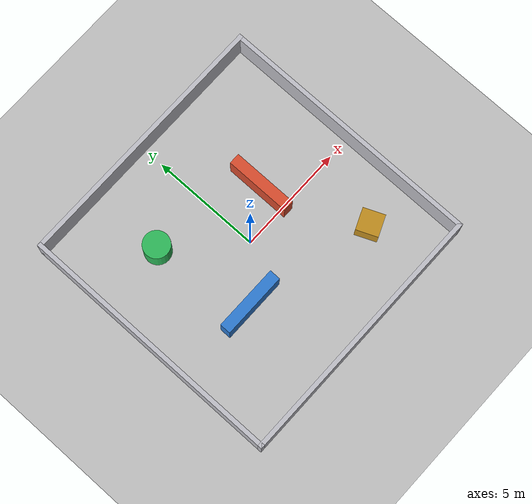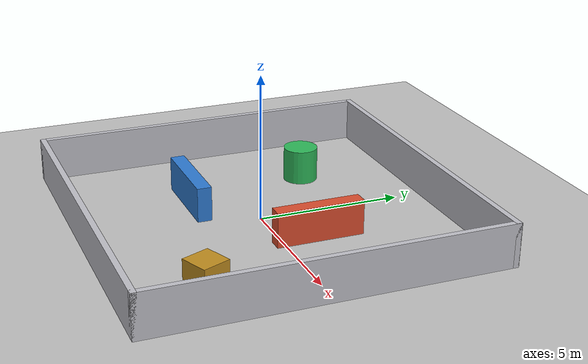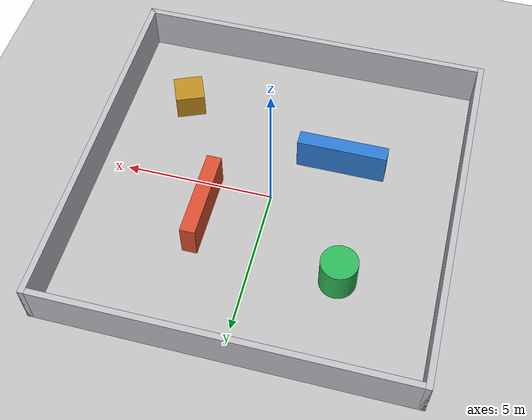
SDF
<?xml version="1.0"?>
<sdf version="1.9">
  <world name="robotbase_arena">
    <physics name="1ms" type="ignored">
      <max_step_size>0.001</max_step_size>
      <real_time_factor>1.0</real_time_factor>
    </physics>
    <plugin filename="gz-sim-physics-system" name="gz::sim::systems::Physics"/>
    <plugin filename="gz-sim-scene-broadcaster-system" name="gz::sim::systems::SceneBroadcaster"/>
    <plugin filename="gz-sim-user-commands-system" name="gz::sim::systems::UserCommands"/>
    <plugin filename="gz-sim-sensors-system" name="gz::sim::systems::Sensors">
      <render_engine>ogre2</render_engine>
    </plugin>

    <light type="directional" name="sun">
      <pose>0 0 10 0 0 0</pose>
      <cast_shadows>true</cast_shadows>
      <diffuse>0.9 0.9 0.9 1</diffuse>
      <specular>0.2 0.2 0.2 1</specular>
      <direction>-0.5 0.2 -0.9</direction>
    </light>

    <model name="ground">
      <static>true</static>
      <link name="link">
        <collision name="collision"><geometry><plane><normal>0 0 1</normal><size>30 30</size></plane></geometry></collision>
        <visual name="visual">
          <geometry><plane><normal>0 0 1</normal><size>30 30</size></plane></geometry>
          <material><ambient>0.75 0.75 0.75 1</ambient><diffuse>0.75 0.75 0.75 1</diffuse></material>
        </visual>
      </link>
    </model>

    <model name="north_wall">
      <static>true</static><pose>0 6 0.75 0 0 0</pose>
      <link name="link">
        <collision name="collision"><geometry><box><size>12.2 0.20 1.5</size></box></geometry></collision>
        <visual name="visual"><geometry><box><size>12.2 0.20 1.5</size></box></geometry><material><ambient>0.65 0.65 0.68 1</ambient><diffuse>0.75 0.75 0.78 1</diffuse></material></visual>
      </link>
    </model>
    <model name="south_wall">
      <static>true</static><pose>0 -6 0.75 0 0 0</pose>
      <link name="link">
        <collision name="collision"><geometry><box><size>12.2 0.20 1.5</size></box></geometry></collision>
        <visual name="visual"><geometry><box><size>12.2 0.20 1.5</size></box></geometry><material><ambient>0.65 0.65 0.68 1</ambient><diffuse>0.75 0.75 0.78 1</diffuse></material></visual>
      </link>
    </model>
    <model name="east_wall">
      <static>true</static><pose>6 0 0.75 0 0 0</pose>
      <link name="link">
        <collision name="collision"><geometry><box><size>0.20 12.2 1.5</size></box></geometry></collision>
        <visual name="visual"><geometry><box><size>0.20 12.2 1.5</size></box></geometry><material><ambient>0.65 0.65 0.68 1</ambient><diffuse>0.75 0.75 0.78 1</diffuse></material></visual>
      </link>
    </model>
    <model name="west_wall">
      <static>true</static><pose>-6 0 0.75 0 0 0</pose>
      <link name="link">
        <collision name="collision"><geometry><box><size>0.20 12.2 1.5</size></box></geometry></collision>
        <visual name="visual"><geometry><box><size>0.20 12.2 1.5</size></box></geometry><material><ambient>0.65 0.65 0.68 1</ambient><diffuse>0.75 0.75 0.78 1</diffuse></material></visual>
      </link>
    </model>

    <model name="vertical_partition">
      <static>true</static><pose>2.0 1.2 0.60 0 0 0</pose>
      <link name="link">
        <collision name="collision"><geometry><box><size>0.50 3.0 1.2</size></box></geometry></collision>
        <visual name="visual"><geometry><box><size>0.50 3.0 1.2</size></box></geometry><material><ambient>0.75 0.25 0.15 1</ambient><diffuse>0.85 0.30 0.18 1</diffuse></material></visual>
      </link>
    </model>
    <model name="horizontal_partition">
      <static>true</static><pose>-2.0 -1.8 0.60 0 0 0</pose>
      <link name="link">
        <collision name="collision"><geometry><box><size>3.0 0.50 1.2</size></box></geometry></collision>
        <visual name="visual"><geometry><box><size>3.0 0.50 1.2</size></box></geometry><material><ambient>0.15 0.40 0.70 1</ambient><diffuse>0.18 0.48 0.82 1</diffuse></material></visual>
      </link>
    </model>
    <model name="round_obstacle">
      <static>true</static><pose>-2.8 2.6 0.60 0 0 0</pose>
      <link name="link">
        <collision name="collision"><geometry><cylinder><radius>0.60</radius><length>1.2</length></cylinder></geometry></collision>
        <visual name="visual"><geometry><cylinder><radius>0.60</radius><length>1.2</length></cylinder></geometry><material><ambient>0.15 0.60 0.30 1</ambient><diffuse>0.18 0.72 0.35 1</diffuse></material></visual>
      </link>
    </model>
    <model name="small_box">
      <static>true</static><pose>3.8 -3.2 0.45 0 0 0.4</pose>
      <link name="link">
        <collision name="collision"><geometry><box><size>1.0 1.0 0.9</size></box></geometry></collision>
        <visual name="visual"><geometry><box><size>1.0 1.0 0.9</size></box></geometry><material><ambient>0.60 0.45 0.10 1</ambient><diffuse>0.75 0.55 0.12 1</diffuse></material></visual>
      </link>
    </model>
  </world>
</sdf>
